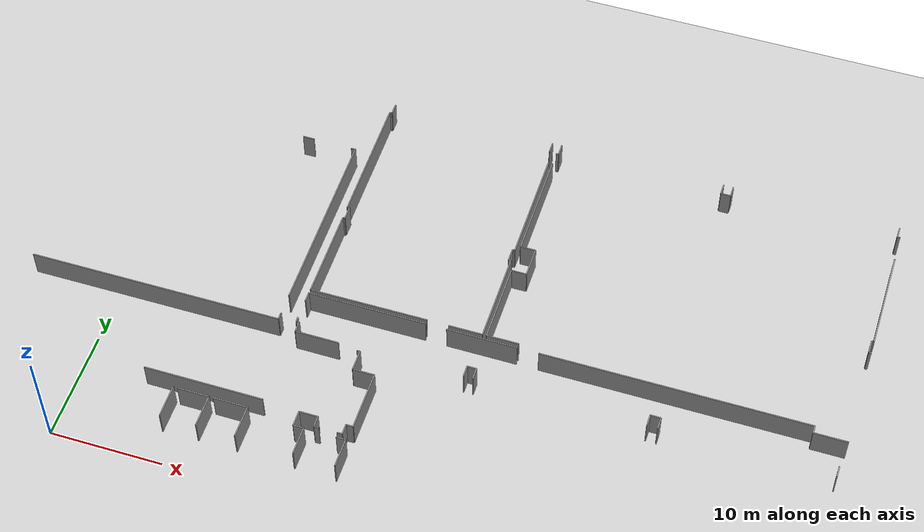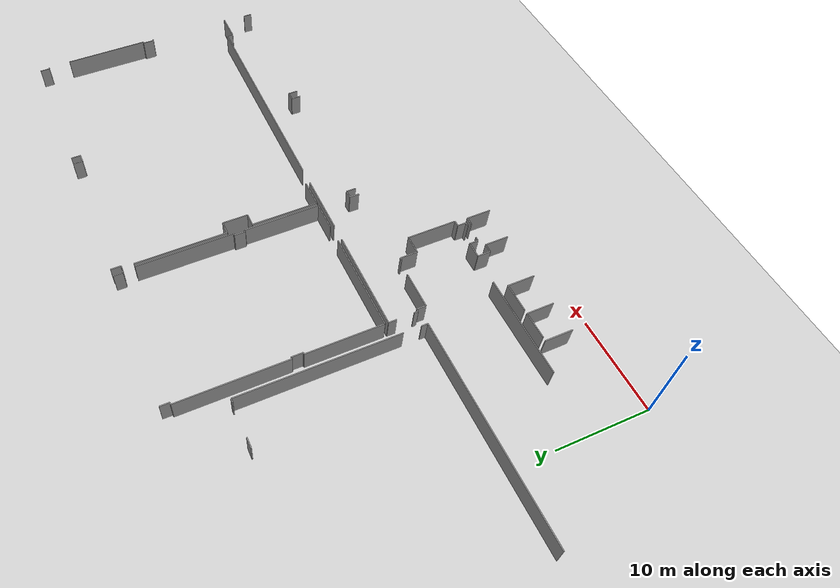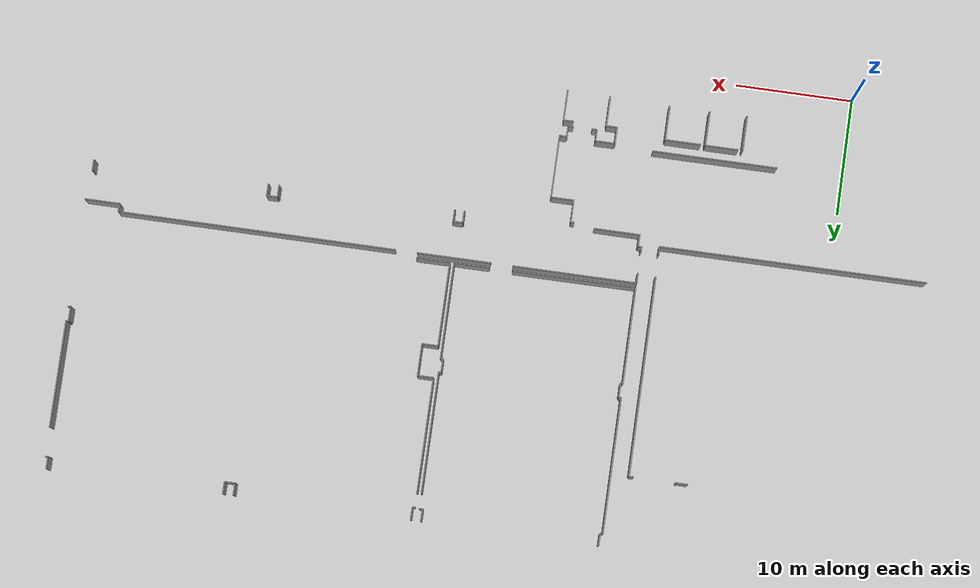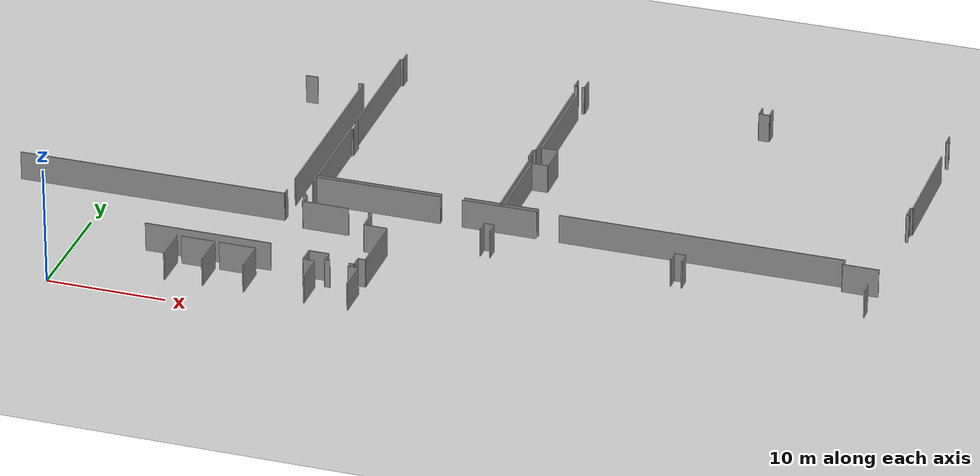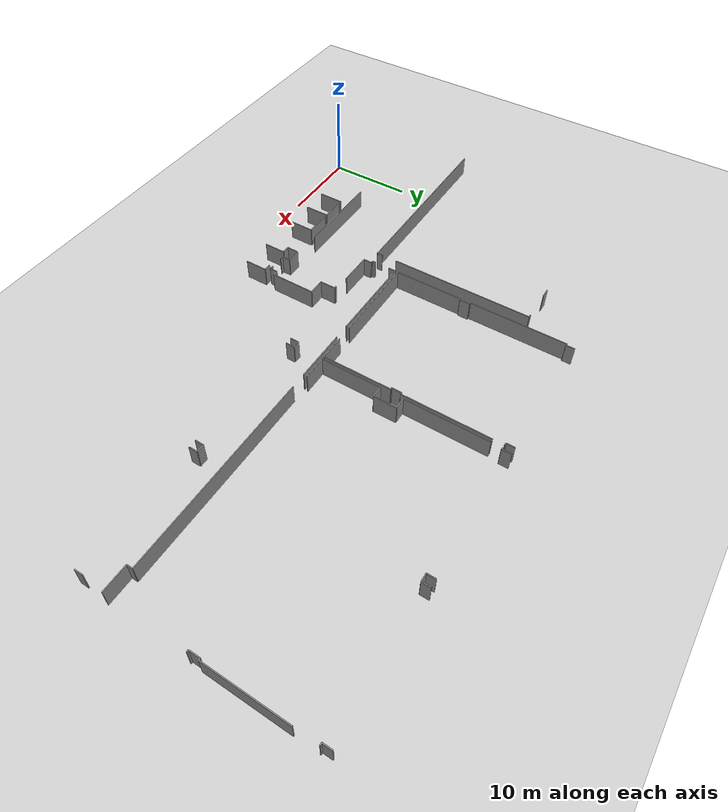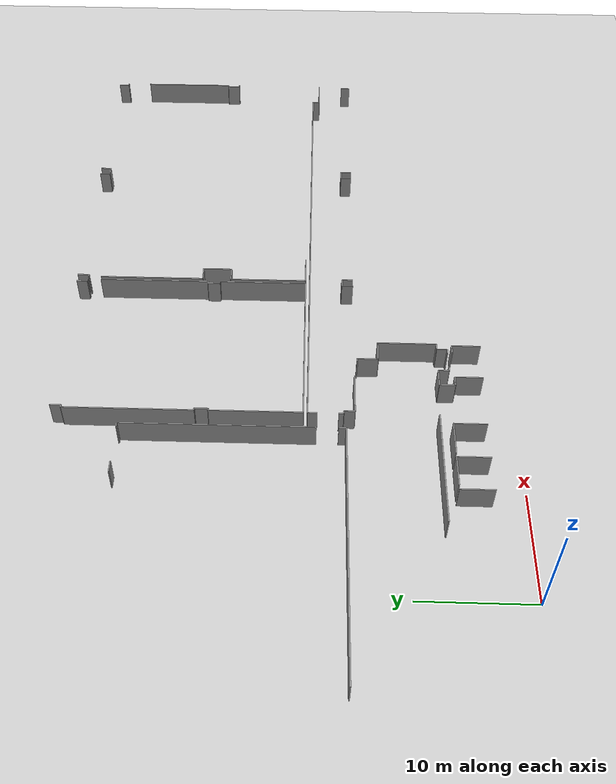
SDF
<sdf version="1.6">
 <world name="default">
  <model name="ground_plane">
   <static>1</static>
   <link name="link">
    <collision name="collision">
     <geometry><plane><normal>0 0 1</normal><size>100 100</size></plane></geometry>
     <surface><friction><ode><mu>100</mu><mu2>50</mu2></ode></friction></surface>
    </collision>
    <visual name="visual">
     <cast_shadows>0</cast_shadows>
     <geometry><plane><normal>0 0 1</normal><size>100 100</size></plane></geometry>
     <material>
      <script><uri>file://media/materials/scripts/gazebo.material</uri><name>Gazebo/Grey</name></script>
     </material>
    </visual>
   </link>
  </model>
  <model name="0510035741_A_40_1_104">
   <static>1</static>
   <link name="Wall_197">
    <collision name="Wall_197_Collision">
     <geometry><box><size>1.05231742242 0.1 2.5</size></box></geometry>
     <pose>0.52615871121 0 1.25 0 0 0</pose>
    </collision>
    <visual name="Wall_197_Visual">
     <pose>0.52615871121 0 1.25 0 0 0</pose>
     <geometry><box><size>1.05231742242 0.1 2.5</size></box></geometry>
     <material>
      <script><uri>file://media/materials/scripts/gazebo.material</uri><name>Gazebo/Grey</name></script>
      <ambient>1 1 1 1</ambient>
     </material>
    </visual>
    <pose>103.708510868 -14.828963494 0 0 0 0.0</pose>
   </link>
   <link name="Wall_198">
    <collision name="Wall_198_Collision">
     <geometry><box><size>0.400810256475 0.1 2.5</size></box></geometry>
     <pose>0.200405128238 0 1.25 0 0 0</pose>
    </collision>
    <visual name="Wall_198_Visual">
     <pose>0.200405128238 0 1.25 0 0 0</pose>
     <geometry><box><size>0.400810256475 0.1 2.5</size></box></geometry>
     <material>
      <script><uri>file://media/materials/scripts/gazebo.material</uri><name>Gazebo/Grey</name></script>
      <ambient>1 1 1 1</ambient>
     </material>
    </visual>
    <pose>108.334592745 -14.828963494 0 0 0 0.0</pose>
   </link>
   <link name="Wall_199">
    <collision name="Wall_199_Collision">
     <geometry><box><size>17.1329874715 0.1 2.5</size></box></geometry>
     <pose>8.56649373575 0 1.25 0 0 0</pose>
    </collision>
    <visual name="Wall_199_Visual">
     <pose>8.56649373575 0 1.25 0 0 0</pose>
     <geometry><box><size>17.1329874715 0.1 2.5</size></box></geometry>
     <material>
      <script><uri>file://media/materials/scripts/gazebo.material</uri><name>Gazebo/Grey</name></script>
      <ambient>1 1 1 1</ambient>
     </material>
    </visual>
    <pose>108.735403001 -14.828963494 0 0 0 -1.57079632679</pose>
   </link>
   <link name="Wall_200">
    <collision name="Wall_200_Collision">
     <geometry><box><size>0.668017094126 0.1 2.5</size></box></geometry>
     <pose>0.334008547063 0 1.25 0 0 0</pose>
    </collision>
    <visual name="Wall_200_Visual">
     <pose>0.334008547063 0 1.25 0 0 0</pose>
     <geometry><box><size>0.668017094126 0.1 2.5</size></box></geometry>
     <material>
      <script><uri>file://media/materials/scripts/gazebo.material</uri><name>Gazebo/Grey</name></script>
      <ambient>1 1 1 1</ambient>
     </material>
    </visual>
    <pose>108.735403001 -33.8679586744 0 0 0 -1.57079632679</pose>
   </link>
   <link name="Wall_201">
    <collision name="Wall_201_Collision">
     <geometry><box><size>22.8467474121 0.1 2.5</size></box></geometry>
     <pose>11.423373706 0 1.25 0 0 0</pose>
    </collision>
    <visual name="Wall_201_Visual">
     <pose>11.423373706 0 1.25 0 0 0</pose>
     <geometry><box><size>22.8467474121 0.1 2.5</size></box></geometry>
     <material>
      <script><uri>file://media/materials/scripts/gazebo.material</uri><name>Gazebo/Grey</name></script>
      <ambient>1 1 1 1</ambient>
     </material>
    </visual>
    <pose>108.735403001 -34.5359757685 0 0 0 -3.13940250278</pose>
   </link>
   <link name="Wall_207">
    <collision name="Wall_207_Collision">
     <geometry><box><size>0.288288745944 0.1 2.5</size></box></geometry>
     <pose>0.144144372972 0 1.25 0 0 0</pose>
    </collision>
    <visual name="Wall_207_Visual">
     <pose>0.144144372972 0 1.25 0 0 0</pose>
     <geometry><box><size>0.288288745944 0.1 2.5</size></box></geometry>
     <material>
      <script><uri>file://media/materials/scripts/gazebo.material</uri><name>Gazebo/Grey</name></script>
      <ambient>1 1 1 1</ambient>
     </material>
    </visual>
    <pose>116.226592414 -35.5801652263 0 0 0 0.0</pose>
   </link>
   <link name="Wall_208">
    <collision name="Wall_208_Collision">
     <geometry><box><size>1.89178377074 0.1 2.5</size></box></geometry>
     <pose>0.94589188537 0 1.25 0 0 0</pose>
    </collision>
    <visual name="Wall_208_Visual">
     <pose>0.94589188537 0 1.25 0 0 0</pose>
     <geometry><box><size>1.89178377074 0.1 2.5</size></box></geometry>
     <material>
      <script><uri>file://media/materials/scripts/gazebo.material</uri><name>Gazebo/Grey</name></script>
      <ambient>1 1 1 1</ambient>
     </material>
    </visual>
    <pose>116.51488116 -35.5801652263 0 0 0 -1.57079632679</pose>
   </link>
   <link name="Wall_209">
    <collision name="Wall_209_Collision">
     <geometry><box><size>1.93978956192 0.1 2.5</size></box></geometry>
     <pose>0.969894780958 0 1.25 0 0 0</pose>
    </collision>
    <visual name="Wall_209_Visual">
     <pose>0.969894780958 0 1.25 0 0 0</pose>
     <geometry><box><size>1.93978956192 0.1 2.5</size></box></geometry>
     <material>
      <script><uri>file://media/materials/scripts/gazebo.material</uri><name>Gazebo/Grey</name></script>
      <ambient>1 1 1 1</ambient>
     </material>
    </visual>
    <pose>116.51488116 -37.471948997 0 0 0 0.0</pose>
   </link>
   <link name="Wall_210">
    <collision name="Wall_210_Collision">
     <geometry><box><size>5.35861469003 0.1 2.5</size></box></geometry>
     <pose>2.67930734501 0 1.25 0 0 0</pose>
    </collision>
    <visual name="Wall_210_Visual">
     <pose>2.67930734501 0 1.25 0 0 0</pose>
     <geometry><box><size>5.35861469003 0.1 2.5</size></box></geometry>
     <material>
      <script><uri>file://media/materials/scripts/gazebo.material</uri><name>Gazebo/Grey</name></script>
      <ambient>1 1 1 1</ambient>
     </material>
    </visual>
    <pose>118.454670722 -37.471948997 0 0 0 -1.57079632679</pose>
   </link>
   <link name="Wall_211">
    <collision name="Wall_211_Collision">
     <geometry><box><size>0.614677326154 0.1 2.5</size></box></geometry>
     <pose>0.307338663077 0 1.25 0 0 0</pose>
    </collision>
    <visual name="Wall_211_Visual">
     <pose>0.307338663077 0 1.25 0 0 0</pose>
     <geometry><box><size>0.614677326154 0.1 2.5</size></box></geometry>
     <material>
      <script><uri>file://media/materials/scripts/gazebo.material</uri><name>Gazebo/Grey</name></script>
      <ambient>1 1 1 1</ambient>
     </material>
    </visual>
    <pose>118.454670722 -42.830563687 0 0 0 3.14159265359</pose>
   </link>
   <link name="Wall_212">
    <collision name="Wall_212_Collision">
     <geometry><box><size>0.941065906363 0.1 2.5</size></box></geometry>
     <pose>0.470532953182 0 1.25 0 0 0</pose>
    </collision>
    <visual name="Wall_212_Visual">
     <pose>0.470532953182 0 1.25 0 0 0</pose>
     <geometry><box><size>0.941065906363 0.1 2.5</size></box></geometry>
     <material>
      <script><uri>file://media/materials/scripts/gazebo.material</uri><name>Gazebo/Grey</name></script>
      <ambient>1 1 1 1</ambient>
     </material>
    </visual>
    <pose>117.839993396 -42.830563687 0 0 0 -1.57079632679</pose>
   </link>
   <link name="Wall_213">
    <collision name="Wall_213_Collision">
     <geometry><box><size>0.448054050965 0.1 2.5</size></box></geometry>
     <pose>0.224027025482 0 1.25 0 0 0</pose>
    </collision>
    <visual name="Wall_213_Visual">
     <pose>0.224027025482 0 1.25 0 0 0</pose>
     <geometry><box><size>0.448054050965 0.1 2.5</size></box></geometry>
     <material>
      <script><uri>file://media/materials/scripts/gazebo.material</uri><name>Gazebo/Grey</name></script>
      <ambient>1 1 1 1</ambient>
     </material>
    </visual>
    <pose>117.839993396 -43.7716295934 0 0 0 3.14159265359</pose>
   </link>
   <link name="Wall_214">
    <collision name="Wall_214_Collision">
     <geometry><box><size>0.440180085217 0.1 2.5</size></box></geometry>
     <pose>0.220090042608 0 1.25 0 0 0</pose>
    </collision>
    <visual name="Wall_214_Visual">
     <pose>0.220090042608 0 1.25 0 0 0</pose>
     <geometry><box><size>0.440180085217 0.1 2.5</size></box></geometry>
     <material>
      <script><uri>file://media/materials/scripts/gazebo.material</uri><name>Gazebo/Grey</name></script>
      <ambient>1 1 1 1</ambient>
     </material>
    </visual>
    <pose>115.805462246 -43.7716295934 0 0 0 3.14159265359</pose>
   </link>
   <link name="Wall_215">
    <collision name="Wall_215_Collision">
     <geometry><box><size>0.974085762727 0.1 2.5</size></box></geometry>
     <pose>0.487042881363 0 1.25 0 0 0</pose>
    </collision>
    <visual name="Wall_215_Visual">
     <pose>0.487042881363 0 1.25 0 0 0</pose>
     <geometry><box><size>0.974085762727 0.1 2.5</size></box></geometry>
     <material>
      <script><uri>file://media/materials/scripts/gazebo.material</uri><name>Gazebo/Grey</name></script>
      <ambient>1 1 1 1</ambient>
     </material>
    </visual>
    <pose>115.365282161 -43.7716295934 0 0 0 1.57079632679</pose>
   </link>
   <link name="Wall_216">
    <collision name="Wall_216_Collision">
     <geometry><box><size>1.66902673973 0.1 2.5</size></box></geometry>
     <pose>0.834513369867 0 1.25 0 0 0</pose>
    </collision>
    <visual name="Wall_216_Visual">
     <pose>0.834513369867 0 1.25 0 0 0</pose>
     <geometry><box><size>1.66902673973 0.1 2.5</size></box></geometry>
     <material>
      <script><uri>file://media/materials/scripts/gazebo.material</uri><name>Gazebo/Grey</name></script>
      <ambient>1 1 1 1</ambient>
     </material>
    </visual>
    <pose>115.365282161 -42.7975438307 0 0 0 3.14159265359</pose>
   </link>
   <link name="Wall_217">
    <collision name="Wall_217_Collision">
     <geometry><box><size>1.41248785568 0.1 2.5</size></box></geometry>
     <pose>0.706243927839 0 1.25 0 0 0</pose>
    </collision>
    <visual name="Wall_217_Visual">
     <pose>0.706243927839 0 1.25 0 0 0</pose>
     <geometry><box><size>1.41248785568 0.1 2.5</size></box></geometry>
     <material>
      <script><uri>file://media/materials/scripts/gazebo.material</uri><name>Gazebo/Grey</name></script>
      <ambient>1 1 1 1</ambient>
     </material>
    </visual>
    <pose>113.696255421 -42.7975438307 0 0 0 -1.57079632679</pose>
   </link>
   <link name="Wall_218">
    <collision name="Wall_218_Collision">
     <geometry><box><size>0.924555978181 0.1 2.5</size></box></geometry>
     <pose>0.462277989091 0 1.25 0 0 0</pose>
    </collision>
    <visual name="Wall_218_Visual">
     <pose>0.462277989091 0 1.25 0 0 0</pose>
     <geometry><box><size>0.924555978181 0.1 2.5</size></box></geometry>
     <material>
      <script><uri>file://media/materials/scripts/gazebo.material</uri><name>Gazebo/Grey</name></script>
      <ambient>1 1 1 1</ambient>
     </material>
    </visual>
    <pose>113.696255421 -44.2100316864 0 0 0 0.0</pose>
   </link>
   <link name="Wall_219">
    <collision name="Wall_219_Collision">
     <geometry><box><size>2.55599088144 0.1 2.5</size></box></geometry>
     <pose>1.27799544072 0 1.25 0 0 0</pose>
    </collision>
    <visual name="Wall_219_Visual">
     <pose>1.27799544072 0 1.25 0 0 0</pose>
     <geometry><box><size>2.55599088144 0.1 2.5</size></box></geometry>
     <material>
      <script><uri>file://media/materials/scripts/gazebo.material</uri><name>Gazebo/Grey</name></script>
      <ambient>1 1 1 1</ambient>
     </material>
    </visual>
    <pose>114.620811399 -44.2100316864 0 0 0 -1.57079632679</pose>
   </link>
   <link name="Wall_222">
    <collision name="Wall_222_Collision">
     <geometry><box><size>10.6783675491 0.1 2.5</size></box></geometry>
     <pose>5.33918377455 0 1.25 0 0 0</pose>
    </collision>
    <visual name="Wall_222_Visual">
     <pose>5.33918377455 0 1.25 0 0 0</pose>
     <geometry><box><size>10.6783675491 0.1 2.5</size></box></geometry>
     <material>
      <script><uri>file://media/materials/scripts/gazebo.material</uri><name>Gazebo/Grey</name></script>
      <ambient>1 1 1 1</ambient>
     </material>
    </visual>
    <pose>110.407223729 -42.5999326903 0 0 0 3.14159265359</pose>
   </link>
   <link name="Wall_226">
    <collision name="Wall_226_Collision">
     <geometry><box><size>0.998723655552 0.1 2.5</size></box></geometry>
     <pose>0.499361827776 0 1.25 0 0 0</pose>
    </collision>
    <visual name="Wall_226_Visual">
     <pose>0.499361827776 0 1.25 0 0 0</pose>
     <geometry><box><size>0.998723655552 0.1 2.5</size></box></geometry>
     <material>
      <script><uri>file://media/materials/scripts/gazebo.material</uri><name>Gazebo/Grey</name></script>
      <ambient>1 1 1 1</ambient>
     </material>
    </visual>
    <pose>110.56089306 -35.3017824372 0 0 0 1.57079632679</pose>
   </link>
   <link name="Wall_227">
    <collision name="Wall_227_Collision">
     <geometry><box><size>0.288034747049 0.1 2.5</size></box></geometry>
     <pose>0.144017373524 0 1.25 0 0 0</pose>
    </collision>
    <visual name="Wall_227_Visual">
     <pose>0.144017373524 0 1.25 0 0 0</pose>
     <geometry><box><size>0.288034747049 0.1 2.5</size></box></geometry>
     <material>
      <script><uri>file://media/materials/scripts/gazebo.material</uri><name>Gazebo/Grey</name></script>
      <ambient>1 1 1 1</ambient>
     </material>
    </visual>
    <pose>110.56089306 -34.3030587817 0 0 0 3.14159265359</pose>
   </link>
   <link name="Wall_228">
    <collision name="Wall_228_Collision">
     <geometry><box><size>0.422654161454 0.1 2.5</size></box></geometry>
     <pose>0.211327080727 0 1.25 0 0 0</pose>
    </collision>
    <visual name="Wall_228_Visual">
     <pose>0.211327080727 0 1.25 0 0 0</pose>
     <geometry><box><size>0.422654161454 0.1 2.5</size></box></geometry>
     <material>
      <script><uri>file://media/materials/scripts/gazebo.material</uri><name>Gazebo/Grey</name></script>
      <ambient>1 1 1 1</ambient>
     </material>
    </visual>
    <pose>110.272858313 -34.3030587817 0 0 0 1.57079632679</pose>
   </link>
   <link name="Wall_229">
    <collision name="Wall_229_Collision">
     <geometry><box><size>0.864104241147 0.1 2.5</size></box></geometry>
     <pose>0.432052120573 0 1.25 0 0 0</pose>
    </collision>
    <visual name="Wall_229_Visual">
     <pose>0.432052120573 0 1.25 0 0 0</pose>
     <geometry><box><size>0.864104241147 0.1 2.5</size></box></geometry>
     <material>
      <script><uri>file://media/materials/scripts/gazebo.material</uri><name>Gazebo/Grey</name></script>
      <ambient>1 1 1 1</ambient>
     </material>
    </visual>
    <pose>110.272858313 -32.0366266407 0 0 0 1.57079632679</pose>
   </link>
   <link name="Wall_230">
    <collision name="Wall_230_Collision">
     <geometry><box><size>10.6209637988 0.1 2.5</size></box></geometry>
     <pose>5.3104818994 0 1.25 0 0 0</pose>
    </collision>
    <visual name="Wall_230_Visual">
     <pose>5.3104818994 0 1.25 0 0 0</pose>
     <geometry><box><size>10.6209637988 0.1 2.5</size></box></geometry>
     <material>
      <script><uri>file://media/materials/scripts/gazebo.material</uri><name>Gazebo/Grey</name></script>
      <ambient>1 1 1 1</ambient>
     </material>
    </visual>
    <pose>110.272858313 -31.1725223995 0 0 0 0.0</pose>
   </link>
   <link name="Wall_231">
    <collision name="Wall_231_Collision">
     <geometry><box><size>6.29612461186 0.1 2.5</size></box></geometry>
     <pose>3.14806230593 0 1.25 0 0 0</pose>
    </collision>
    <visual name="Wall_231_Visual">
     <pose>3.14806230593 0 1.25 0 0 0</pose>
     <geometry><box><size>6.29612461186 0.1 2.5</size></box></geometry>
     <material>
      <script><uri>file://media/materials/scripts/gazebo.material</uri><name>Gazebo/Grey</name></script>
      <ambient>1 1 1 1</ambient>
     </material>
    </visual>
    <pose>122.764269975 -31.1725223995 0 0 0 0.0</pose>
   </link>
   <link name="Wall_232">
    <collision name="Wall_232_Collision">
     <geometry><box><size>23.7885205199 0.1 2.5</size></box></geometry>
     <pose>11.89426026 0 1.25 0 0 0</pose>
    </collision>
    <visual name="Wall_232_Visual">
     <pose>11.89426026 0 1.25 0 0 0</pose>
     <geometry><box><size>23.7885205199 0.1 2.5</size></box></geometry>
     <material>
      <script><uri>file://media/materials/scripts/gazebo.material</uri><name>Gazebo/Grey</name></script>
      <ambient>1 1 1 1</ambient>
     </material>
    </visual>
    <pose>130.957766334 -31.1725223995 0 0 0 0.0</pose>
   </link>
   <link name="Wall_233">
    <collision name="Wall_233_Collision">
     <geometry><box><size>0.688337005734 0.1 2.5</size></box></geometry>
     <pose>0.344168502867 0 1.25 0 0 0</pose>
    </collision>
    <visual name="Wall_233_Visual">
     <pose>0.344168502867 0 1.25 0 0 0</pose>
     <geometry><box><size>0.688337005734 0.1 2.5</size></box></geometry>
     <material>
      <script><uri>file://media/materials/scripts/gazebo.material</uri><name>Gazebo/Grey</name></script>
      <ambient>1 1 1 1</ambient>
     </material>
    </visual>
    <pose>154.746286854 -31.1725223995 0 0 0 -1.57079632679</pose>
   </link>
   <link name="Wall_234">
    <collision name="Wall_234_Collision">
     <geometry><box><size>2.99286898102 0.1 2.5</size></box></geometry>
     <pose>1.49643449051 0 1.25 0 0 0</pose>
    </collision>
    <visual name="Wall_234_Visual">
     <pose>1.49643449051 0 1.25 0 0 0</pose>
     <geometry><box><size>2.99286898102 0.1 2.5</size></box></geometry>
     <material>
      <script><uri>file://media/materials/scripts/gazebo.material</uri><name>Gazebo/Grey</name></script>
      <ambient>1 1 1 1</ambient>
     </material>
    </visual>
    <pose>154.746286854 -31.8608594053 0 0 0 0.0</pose>
   </link>
   <link name="Wall_238">
    <collision name="Wall_238_Collision">
     <geometry><box><size>0.941065906363 0.1 2.5</size></box></geometry>
     <pose>0.470532953182 0 1.25 0 0 0</pose>
    </collision>
    <visual name="Wall_238_Visual">
     <pose>0.470532953182 0 1.25 0 0 0</pose>
     <geometry><box><size>0.941065906363 0.1 2.5</size></box></geometry>
     <material>
      <script><uri>file://media/materials/scripts/gazebo.material</uri><name>Gazebo/Grey</name></script>
      <ambient>1 1 1 1</ambient>
     </material>
    </visual>
    <pose>157.481092957 -34.379766448 0 0 0 -1.57079632679</pose>
   </link>
   <link name="Wall_239">
    <collision name="Wall_239_Collision">
     <geometry><box><size>1.04393545888 0.1 2.5</size></box></geometry>
     <pose>0.52196772944 0 1.25 0 0 0</pose>
    </collision>
    <visual name="Wall_239_Visual">
     <pose>0.52196772944 0 1.25 0 0 0</pose>
     <geometry><box><size>1.04393545888 0.1 2.5</size></box></geometry>
     <material>
      <script><uri>file://media/materials/scripts/gazebo.material</uri><name>Gazebo/Grey</name></script>
      <ambient>1 1 1 1</ambient>
     </material>
    </visual>
    <pose>142.450708339 -35.3208323544 0 0 0 1.57079632679</pose>
   </link>
   <link name="Wall_240">
    <collision name="Wall_240_Collision">
     <geometry><box><size>0.926333970447 0.1 2.5</size></box></geometry>
     <pose>0.463166985224 0 1.25 0 0 0</pose>
    </collision>
    <visual name="Wall_240_Visual">
     <pose>0.463166985224 0 1.25 0 0 0</pose>
     <geometry><box><size>0.926333970447 0.1 2.5</size></box></geometry>
     <material>
      <script><uri>file://media/materials/scripts/gazebo.material</uri><name>Gazebo/Grey</name></script>
      <ambient>1 1 1 1</ambient>
     </material>
    </visual>
    <pose>142.450708339 -34.2768968955 0 0 0 3.14159265359</pose>
   </link>
   <link name="Wall_241">
    <collision name="Wall_241_Collision">
     <geometry><box><size>1.03123551413 0.1 2.5</size></box></geometry>
     <pose>0.515617757063 0 1.25 0 0 0</pose>
    </collision>
    <visual name="Wall_241_Visual">
     <pose>0.515617757063 0 1.25 0 0 0</pose>
     <geometry><box><size>1.03123551413 0.1 2.5</size></box></geometry>
     <material>
      <script><uri>file://media/materials/scripts/gazebo.material</uri><name>Gazebo/Grey</name></script>
      <ambient>1 1 1 1</ambient>
     </material>
    </visual>
    <pose>141.524374369 -34.2768968955 0 0 0 -1.57079632679</pose>
   </link>
   <link name="Wall_242">
    <collision name="Wall_242_Collision">
     <geometry><box><size>1.04596745004 0.1 2.5</size></box></geometry>
     <pose>0.522983725021 0 1.25 0 0 0</pose>
    </collision>
    <visual name="Wall_242_Visual">
     <pose>0.522983725021 0 1.25 0 0 0</pose>
     <geometry><box><size>1.04596745004 0.1 2.5</size></box></geometry>
     <material>
      <script><uri>file://media/materials/scripts/gazebo.material</uri><name>Gazebo/Grey</name></script>
      <ambient>1 1 1 1</ambient>
     </material>
    </visual>
    <pose>126.427442041 -35.3081324096 0 0 0 1.57079632679</pose>
   </link>
   <link name="Wall_243">
    <collision name="Wall_243_Collision">
     <geometry><box><size>0.827782399147 0.1 2.5</size></box></geometry>
     <pose>0.413891199573 0 1.25 0 0 0</pose>
    </collision>
    <visual name="Wall_243_Visual">
     <pose>0.413891199573 0 1.25 0 0 0</pose>
     <geometry><box><size>0.827782399147 0.1 2.5</size></box></geometry>
     <material>
      <script><uri>file://media/materials/scripts/gazebo.material</uri><name>Gazebo/Grey</name></script>
      <ambient>1 1 1 1</ambient>
     </material>
    </visual>
    <pose>126.427442041 -34.2621649596 0 0 0 3.14159265359</pose>
   </link>
   <link name="Wall_244">
    <collision name="Wall_244_Collision">
     <geometry><box><size>1.04571345115 0.1 2.5</size></box></geometry>
     <pose>0.522856725573 0 1.25 0 0 0</pose>
    </collision>
    <visual name="Wall_244_Visual">
     <pose>0.522856725573 0 1.25 0 0 0</pose>
     <geometry><box><size>1.04571345115 0.1 2.5</size></box></geometry>
     <material>
      <script><uri>file://media/materials/scripts/gazebo.material</uri><name>Gazebo/Grey</name></script>
      <ambient>1 1 1 1</ambient>
     </material>
    </visual>
    <pose>125.599659641 -34.2621649596 0 0 0 -1.57079632679</pose>
   </link>
   <link name="Wall_245">
    <collision name="Wall_245_Collision">
     <geometry><box><size>3.91971568951 0.1 2.5</size></box></geometry>
     <pose>1.95985784476 0 1.25 0 0 0</pose>
    </collision>
    <visual name="Wall_245_Visual">
     <pose>1.95985784476 0 1.25 0 0 0</pose>
     <geometry><box><size>3.91971568951 0.1 2.5</size></box></geometry>
     <material>
      <script><uri>file://media/materials/scripts/gazebo.material</uri><name>Gazebo/Grey</name></script>
      <ambient>1 1 1 1</ambient>
     </material>
    </visual>
    <pose>114.480604009 -35.3078784107 0 0 0 3.14003744489</pose>
   </link>
   <link name="Wall_246">
    <collision name="Wall_246_Collision">
     <geometry><box><size>7.21941059556 0.1 2.5</size></box></geometry>
     <pose>3.60970529778 0 1.25 0 0 0</pose>
    </collision>
    <visual name="Wall_246_Visual">
     <pose>3.60970529778 0 1.25 0 0 0</pose>
     <geometry><box><size>7.21941059556 0.1 2.5</size></box></geometry>
     <material>
      <script><uri>file://media/materials/scripts/gazebo.material</uri><name>Gazebo/Grey</name></script>
      <ambient>1 1 1 1</ambient>
     </material>
    </visual>
    <pose>126.206209003 -30.7661241674 0 0 0 1.57079632679</pose>
   </link>
   <link name="Wall_247">
    <collision name="Wall_247_Collision">
     <geometry><box><size>1.36778405014 0.1 2.5</size></box></geometry>
     <pose>0.68389202507 0 1.25 0 0 0</pose>
    </collision>
    <visual name="Wall_247_Visual">
     <pose>0.68389202507 0 1.25 0 0 0</pose>
     <geometry><box><size>1.36778405014 0.1 2.5</size></box></geometry>
     <material>
      <script><uri>file://media/materials/scripts/gazebo.material</uri><name>Gazebo/Grey</name></script>
      <ambient>1 1 1 1</ambient>
     </material>
    </visual>
    <pose>126.206209003 -23.5467135718 0 0 0 0.0</pose>
   </link>
   <link name="Wall_248">
    <collision name="Wall_248_Collision">
     <geometry><box><size>2.72210615884 0.1 2.5</size></box></geometry>
     <pose>1.36105307942 0 1.25 0 0 0</pose>
    </collision>
    <visual name="Wall_248_Visual">
     <pose>1.36105307942 0 1.25 0 0 0</pose>
     <geometry><box><size>2.72210615884 0.1 2.5</size></box></geometry>
     <material>
      <script><uri>file://media/materials/scripts/gazebo.material</uri><name>Gazebo/Grey</name></script>
      <ambient>1 1 1 1</ambient>
     </material>
    </visual>
    <pose>127.573993053 -23.5467135718 0 0 0 1.57079632679</pose>
   </link>
   <link name="Wall_249">
    <collision name="Wall_249_Collision">
     <geometry><box><size>1.35279811533 0.1 2.5</size></box></geometry>
     <pose>0.676399057664 0 1.25 0 0 0</pose>
    </collision>
    <visual name="Wall_249_Visual">
     <pose>0.676399057664 0 1.25 0 0 0</pose>
     <geometry><box><size>1.35279811533 0.1 2.5</size></box></geometry>
     <material>
      <script><uri>file://media/materials/scripts/gazebo.material</uri><name>Gazebo/Grey</name></script>
      <ambient>1 1 1 1</ambient>
     </material>
    </visual>
    <pose>127.573993053 -20.824607413 0 0 0 3.14159265359</pose>
   </link>
   <link name="Wall_250">
    <collision name="Wall_250_Collision">
     <geometry><box><size>9.83686920962 0.1 2.5</size></box></geometry>
     <pose>4.91843460481 0 1.25 0 0 0</pose>
    </collision>
    <visual name="Wall_250_Visual">
     <pose>4.91843460481 0 1.25 0 0 0</pose>
     <geometry><box><size>9.83686920962 0.1 2.5</size></box></geometry>
     <material>
      <script><uri>file://media/materials/scripts/gazebo.material</uri><name>Gazebo/Grey</name></script>
      <ambient>1 1 1 1</ambient>
     </material>
    </visual>
    <pose>126.221194938 -20.824607413 0 0 0 1.57079632679</pose>
   </link>
   <link name="Wall_251">
    <collision name="Wall_251_Collision">
     <geometry><box><size>0.223011029902 0.1 2.5</size></box></geometry>
     <pose>0.111505514951 0 1.25 0 0 0</pose>
    </collision>
    <visual name="Wall_251_Visual">
     <pose>0.111505514951 0 1.25 0 0 0</pose>
     <geometry><box><size>0.223011029902 0.1 2.5</size></box></geometry>
     <material>
      <script><uri>file://media/materials/scripts/gazebo.material</uri><name>Gazebo/Grey</name></script>
      <ambient>1 1 1 1</ambient>
     </material>
    </visual>
    <pose>126.221194938 -9.77692547037 0 0 0 0.0</pose>
   </link>
   <link name="Wall_252">
    <collision name="Wall_252_Collision">
     <geometry><box><size>1.0947352379 0.1 2.5</size></box></geometry>
     <pose>0.547367618951 0 1.25 0 0 0</pose>
    </collision>
    <visual name="Wall_252_Visual">
     <pose>0.547367618951 0 1.25 0 0 0</pose>
     <geometry><box><size>1.0947352379 0.1 2.5</size></box></geometry>
     <material>
      <script><uri>file://media/materials/scripts/gazebo.material</uri><name>Gazebo/Grey</name></script>
      <ambient>1 1 1 1</ambient>
     </material>
    </visual>
    <pose>126.444205968 -9.77692547037 0 0 0 1.57079632679</pose>
   </link>
   <link name="Wall_253">
    <collision name="Wall_253_Collision">
     <geometry><box><size>1.01574158152 0.1 2.5</size></box></geometry>
     <pose>0.507870790762 0 1.25 0 0 0</pose>
    </collision>
    <visual name="Wall_253_Visual">
     <pose>0.507870790762 0 1.25 0 0 0</pose>
     <geometry><box><size>1.01574158152 0.1 2.5</size></box></geometry>
     <material>
      <script><uri>file://media/materials/scripts/gazebo.material</uri><name>Gazebo/Grey</name></script>
      <ambient>1 1 1 1</ambient>
     </material>
    </visual>
    <pose>141.526660359 -8.68219023247 0 0 0 -1.57079632679</pose>
   </link>
   <link name="Wall_254">
    <collision name="Wall_254_Collision">
     <geometry><box><size>0.889504130657 0.1 2.5</size></box></geometry>
     <pose>0.444752065329 0 1.25 0 0 0</pose>
    </collision>
    <visual name="Wall_254_Visual">
     <pose>0.444752065329 0 1.25 0 0 0</pose>
     <geometry><box><size>0.889504130657 0.1 2.5</size></box></geometry>
     <material>
      <script><uri>file://media/materials/scripts/gazebo.material</uri><name>Gazebo/Grey</name></script>
      <ambient>1 1 1 1</ambient>
     </material>
    </visual>
    <pose>141.526660359 -9.697931814 0 0 0 0.0</pose>
   </link>
   <link name="Wall_255">
    <collision name="Wall_255_Collision">
     <geometry><box><size>1.01040760473 0.1 2.5</size></box></geometry>
     <pose>0.505203802363 0 1.25 0 0 0</pose>
    </collision>
    <visual name="Wall_255_Visual">
     <pose>0.505203802363 0 1.25 0 0 0</pose>
     <geometry><box><size>1.01040760473 0.1 2.5</size></box></geometry>
     <material>
      <script><uri>file://media/materials/scripts/gazebo.material</uri><name>Gazebo/Grey</name></script>
      <ambient>1 1 1 1</ambient>
     </material>
    </visual>
    <pose>142.41616449 -9.697931814 0 0 0 1.57079632679</pose>
   </link>
   <link name="Wall_256">
    <collision name="Wall_256_Collision">
     <geometry><box><size>1.02996551965 0.1 2.5</size></box></geometry>
     <pose>0.514982759825 0 1.25 0 0 0</pose>
    </collision>
    <visual name="Wall_256_Visual">
     <pose>0.514982759825 0 1.25 0 0 0</pose>
     <geometry><box><size>1.02996551965 0.1 2.5</size></box></geometry>
     <material>
      <script><uri>file://media/materials/scripts/gazebo.material</uri><name>Gazebo/Grey</name></script>
      <ambient>1 1 1 1</ambient>
     </material>
    </visual>
    <pose>157.470679003 -8.68752420927 0 0 0 -1.57079632679</pose>
   </link>
   <link name="Wall_257">
    <collision name="Wall_257_Collision">
     <geometry><box><size>0.248410919413 0.1 2.5</size></box></geometry>
     <pose>0.124205459706 0 1.25 0 0 0</pose>
    </collision>
    <visual name="Wall_257_Visual">
     <pose>0.124205459706 0 1.25 0 0 0</pose>
     <geometry><box><size>0.248410919413 0.1 2.5</size></box></geometry>
     <material>
      <script><uri>file://media/materials/scripts/gazebo.material</uri><name>Gazebo/Grey</name></script>
      <ambient>1 1 1 1</ambient>
     </material>
    </visual>
    <pose>157.470679003 -9.71748972892 0 0 0 0.0</pose>
   </link>
   <link name="Wall_259">
    <collision name="Wall_259_Collision">
     <geometry><box><size>9.13354626907 0.1 2.5</size></box></geometry>
     <pose>4.56677313454 0 1.25 0 0 0</pose>
    </collision>
    <visual name="Wall_259_Visual">
     <pose>4.56677313454 0 1.25 0 0 0</pose>
     <geometry><box><size>9.13354626907 0.1 2.5</size></box></geometry>
     <material>
      <script><uri>file://media/materials/scripts/gazebo.material</uri><name>Gazebo/Grey</name></script>
      <ambient>1 1 1 1</ambient>
     </material>
    </visual>
    <pose>157.719089922 -12.2054089065 0 0 0 -1.57079632679</pose>
   </link>
   <link name="Wall_260">
    <collision name="Wall_260_Collision">
     <geometry><box><size>0.199643131552 0.1 2.5</size></box></geometry>
     <pose>0.0998215657762 0 1.25 0 0 0</pose>
    </collision>
    <visual name="Wall_260_Visual">
     <pose>0.0998215657762 0 1.25 0 0 0</pose>
     <geometry><box><size>0.199643131552 0.1 2.5</size></box></geometry>
     <material>
      <script><uri>file://media/materials/scripts/gazebo.material</uri><name>Gazebo/Grey</name></script>
      <ambient>1 1 1 1</ambient>
     </material>
    </visual>
    <pose>157.719089922 -21.3389551755 0 0 0 3.14159265359</pose>
   </link>
   <link name="Wall_261">
    <collision name="Wall_261_Collision">
     <geometry><box><size>1.22910065341 0.1 2.5</size></box></geometry>
     <pose>0.614550326706 0 1.25 0 0 0</pose>
    </collision>
    <visual name="Wall_261_Visual">
     <pose>0.614550326706 0 1.25 0 0 0</pose>
     <geometry><box><size>1.22910065341 0.1 2.5</size></box></geometry>
     <material>
      <script><uri>file://media/materials/scripts/gazebo.material</uri><name>Gazebo/Grey</name></script>
      <ambient>1 1 1 1</ambient>
     </material>
    </visual>
    <pose>157.51944679 -21.3389551755 0 0 0 -1.57079632679</pose>
   </link>
   <link name="Wall_262">
    <collision name="Wall_262_Collision">
     <geometry><box><size>0.230630996755 0.1 2.5</size></box></geometry>
     <pose>0.115315498378 0 1.25 0 0 0</pose>
    </collision>
    <visual name="Wall_262_Visual">
     <pose>0.115315498378 0 1.25 0 0 0</pose>
     <geometry><box><size>0.230630996755 0.1 2.5</size></box></geometry>
     <material>
      <script><uri>file://media/materials/scripts/gazebo.material</uri><name>Gazebo/Grey</name></script>
      <ambient>1 1 1 1</ambient>
     </material>
    </visual>
    <pose>157.51944679 -22.568055829 0 0 0 0.0</pose>
   </link>
   <link name="Wall_266">
    <collision name="Wall_266_Collision">
     <geometry><box><size>2.88853332807 0.1 2.5</size></box></geometry>
     <pose>1.44426666404 0 1.25 0 0 0</pose>
    </collision>
    <visual name="Wall_266_Visual">
     <pose>1.44426666404 0 1.25 0 0 0</pose>
     <geometry><box><size>2.88853332807 0.1 2.5</size></box></geometry>
     <material>
      <script><uri>file://media/materials/scripts/gazebo.material</uri><name>Gazebo/Grey</name></script>
      <ambient>1 1 1 1</ambient>
     </material>
    </visual>
    <pose>129.094684438 -30.7478362469 0 0 0 -3.13526139805</pose>
   </link>
   <link name="Wall_267">
    <collision name="Wall_267_Collision">
     <geometry><box><size>8.26207605997 0.1 2.5</size></box></geometry>
     <pose>4.13103802998 0 1.25 0 0 0</pose>
    </collision>
    <visual name="Wall_267_Visual">
     <pose>4.13103802998 0 1.25 0 0 0</pose>
     <geometry><box><size>8.26207605997 0.1 2.5</size></box></geometry>
     <material>
      <script><uri>file://media/materials/scripts/gazebo.material</uri><name>Gazebo/Grey</name></script>
      <ambient>1 1 1 1</ambient>
     </material>
    </visual>
    <pose>110.29648021 -30.8120979674 0 0 0 1.57079632679</pose>
   </link>
   <link name="Wall_268">
    <collision name="Wall_268_Collision">
     <geometry><box><size>0.183641201161 0.1 2.5</size></box></geometry>
     <pose>0.0918206005804 0 1.25 0 0 0</pose>
    </collision>
    <visual name="Wall_268_Visual">
     <pose>0.0918206005804 0 1.25 0 0 0</pose>
     <geometry><box><size>0.183641201161 0.1 2.5</size></box></geometry>
     <material>
      <script><uri>file://media/materials/scripts/gazebo.material</uri><name>Gazebo/Grey</name></script>
      <ambient>1 1 1 1</ambient>
     </material>
    </visual>
    <pose>110.29648021 -22.5500219074 0 0 0 0.0</pose>
   </link>
   <link name="Wall_269">
    <collision name="Wall_269_Collision">
     <geometry><box><size>1.21487671529 0.1 2.5</size></box></geometry>
     <pose>0.607438357643 0 1.25 0 0 0</pose>
    </collision>
    <visual name="Wall_269_Visual">
     <pose>0.607438357643 0 1.25 0 0 0</pose>
     <geometry><box><size>1.21487671529 0.1 2.5</size></box></geometry>
     <material>
      <script><uri>file://media/materials/scripts/gazebo.material</uri><name>Gazebo/Grey</name></script>
      <ambient>1 1 1 1</ambient>
     </material>
    </visual>
    <pose>110.480121411 -22.5500219074 0 0 0 1.57079632679</pose>
   </link>
   <link name="Wall_270">
    <collision name="Wall_270_Collision">
     <geometry><box><size>0.201675122713 0.1 2.5</size></box></geometry>
     <pose>0.100837561357 0 1.25 0 0 0</pose>
    </collision>
    <visual name="Wall_270_Visual">
     <pose>0.100837561357 0 1.25 0 0 0</pose>
     <geometry><box><size>0.201675122713 0.1 2.5</size></box></geometry>
     <material>
      <script><uri>file://media/materials/scripts/gazebo.material</uri><name>Gazebo/Grey</name></script>
      <ambient>1 1 1 1</ambient>
     </material>
    </visual>
    <pose>110.480121411 -21.3351451921 0 0 0 3.14159265359</pose>
   </link>
   <link name="Wall_271">
    <collision name="Wall_271_Collision">
     <geometry><box><size>11.6013995339 0.1 2.5</size></box></geometry>
     <pose>5.80069976696 0 1.25 0 0 0</pose>
    </collision>
    <visual name="Wall_271_Visual">
     <pose>5.80069976696 0 1.25 0 0 0</pose>
     <geometry><box><size>11.6013995339 0.1 2.5</size></box></geometry>
     <material>
      <script><uri>file://media/materials/scripts/gazebo.material</uri><name>Gazebo/Grey</name></script>
      <ambient>1 1 1 1</ambient>
     </material>
    </visual>
    <pose>110.278446289 -21.3351451921 0 0 0 1.57079632679</pose>
   </link>
   <link name="Wall_272">
    <collision name="Wall_272_Collision">
     <geometry><box><size>0.217931052 0.1 2.5</size></box></geometry>
     <pose>0.108965526 0 1.25 0 0 0</pose>
    </collision>
    <visual name="Wall_272_Visual">
     <pose>0.108965526 0 1.25 0 0 0</pose>
     <geometry><box><size>0.217931052 0.1 2.5</size></box></geometry>
     <material>
      <script><uri>file://media/materials/scripts/gazebo.material</uri><name>Gazebo/Grey</name></script>
      <ambient>1 1 1 1</ambient>
     </material>
    </visual>
    <pose>110.278446289 -9.73374565821 0 0 0 0.0</pose>
   </link>
   <link name="Wall_273">
    <collision name="Wall_273_Collision">
     <geometry><box><size>1.01650357821 0.1 2.5</size></box></geometry>
     <pose>0.508251789105 0 1.25 0 0 0</pose>
    </collision>
    <visual name="Wall_273_Visual">
     <pose>0.508251789105 0 1.25 0 0 0</pose>
     <geometry><box><size>1.01650357821 0.1 2.5</size></box></geometry>
     <material>
      <script><uri>file://media/materials/scripts/gazebo.material</uri><name>Gazebo/Grey</name></script>
      <ambient>1 1 1 1</ambient>
     </material>
    </visual>
    <pose>110.496377341 -9.73374565821 0 0 0 1.57079632679</pose>
   </link>
   <link name="Wall_274">
    <collision name="Wall_274_Collision">
     <geometry><box><size>1.00634362241 0.1 2.5</size></box></geometry>
     <pose>0.503171811203 0 1.25 0 0 0</pose>
    </collision>
    <visual name="Wall_274_Visual">
     <pose>0.503171811203 0 1.25 0 0 0</pose>
     <geometry><box><size>1.00634362241 0.1 2.5</size></box></geometry>
     <material>
      <script><uri>file://media/materials/scripts/gazebo.material</uri><name>Gazebo/Grey</name></script>
      <ambient>1 1 1 1</ambient>
     </material>
    </visual>
    <pose>125.575021749 -8.71724208 0 0 0 -1.57079632679</pose>
   </link>
   <link name="Wall_275">
    <collision name="Wall_275_Collision">
     <geometry><box><size>0.277874791245 0.1 2.5</size></box></geometry>
     <pose>0.138937395622 0 1.25 0 0 0</pose>
    </collision>
    <visual name="Wall_275_Visual">
     <pose>0.138937395622 0 1.25 0 0 0</pose>
     <geometry><box><size>0.277874791245 0.1 2.5</size></box></geometry>
     <material>
      <script><uri>file://media/materials/scripts/gazebo.material</uri><name>Gazebo/Grey</name></script>
      <ambient>1 1 1 1</ambient>
     </material>
    </visual>
    <pose>125.575021749 -9.7235857024 0 0 0 0.0</pose>
   </link>
   <link name="Wall_276">
    <collision name="Wall_276_Collision">
     <geometry><box><size>10.3695048927 0.1 2.5</size></box></geometry>
     <pose>5.18475244633 0 1.25 0 0 0</pose>
    </collision>
    <visual name="Wall_276_Visual">
     <pose>5.18475244633 0 1.25 0 0 0</pose>
     <geometry><box><size>10.3695048927 0.1 2.5</size></box></geometry>
     <material>
      <script><uri>file://media/materials/scripts/gazebo.material</uri><name>Gazebo/Grey</name></script>
      <ambient>1 1 1 1</ambient>
     </material>
    </visual>
    <pose>125.85289654 -11.0062801227 0 0 0 -1.57079632679</pose>
   </link>
   <link name="Wall_277">
    <collision name="Wall_277_Collision">
     <geometry><box><size>0.216153059734 0.1 2.5</size></box></geometry>
     <pose>0.108076529867 0 1.25 0 0 0</pose>
    </collision>
    <visual name="Wall_277_Visual">
     <pose>0.108076529867 0 1.25 0 0 0</pose>
     <geometry><box><size>0.216153059734 0.1 2.5</size></box></geometry>
     <material>
      <script><uri>file://media/materials/scripts/gazebo.material</uri><name>Gazebo/Grey</name></script>
      <ambient>1 1 1 1</ambient>
     </material>
    </visual>
    <pose>125.85289654 -21.3757850153 0 0 0 3.14159265359</pose>
   </link>
   <link name="Wall_278">
    <collision name="Wall_278_Collision">
     <geometry><box><size>1.16890291527 0.1 2.5</size></box></geometry>
     <pose>0.584451457636 0 1.25 0 0 0</pose>
    </collision>
    <visual name="Wall_278_Visual">
     <pose>0.584451457636 0 1.25 0 0 0</pose>
     <geometry><box><size>1.16890291527 0.1 2.5</size></box></geometry>
     <material>
      <script><uri>file://media/materials/scripts/gazebo.material</uri><name>Gazebo/Grey</name></script>
      <ambient>1 1 1 1</ambient>
     </material>
    </visual>
    <pose>125.63674348 -21.3757850153 0 0 0 -1.57079632679</pose>
   </link>
   <link name="Wall_279">
    <collision name="Wall_279_Collision">
     <geometry><box><size>0.217169055315 0.1 2.5</size></box></geometry>
     <pose>0.108584527657 0 1.25 0 0 0</pose>
    </collision>
    <visual name="Wall_279_Visual">
     <pose>0.108584527657 0 1.25 0 0 0</pose>
     <geometry><box><size>0.217169055315 0.1 2.5</size></box></geometry>
     <material>
      <script><uri>file://media/materials/scripts/gazebo.material</uri><name>Gazebo/Grey</name></script>
      <ambient>1 1 1 1</ambient>
     </material>
    </visual>
    <pose>125.63674348 -22.5446879306 0 0 0 0.0</pose>
   </link>
   <link name="Wall_280">
    <collision name="Wall_280_Collision">
     <geometry><box><size>8.23210419035 0.1 2.5</size></box></geometry>
     <pose>4.11605209517 0 1.25 0 0 0</pose>
    </collision>
    <visual name="Wall_280_Visual">
     <pose>4.11605209517 0 1.25 0 0 0</pose>
     <geometry><box><size>8.23210419035 0.1 2.5</size></box></geometry>
     <material>
      <script><uri>file://media/materials/scripts/gazebo.material</uri><name>Gazebo/Grey</name></script>
      <ambient>1 1 1 1</ambient>
     </material>
    </visual>
    <pose>125.853912535 -22.5446879306 0 0 0 -1.57079632679</pose>
   </link>
   <link name="Wall_281">
    <collision name="Wall_281_Collision">
     <geometry><box><size>3.04239876557 0.1 2.5</size></box></geometry>
     <pose>1.52119938278 0 1.25 0 0 0</pose>
    </collision>
    <visual name="Wall_281_Visual">
     <pose>1.52119938278 0 1.25 0 0 0</pose>
     <geometry><box><size>3.04239876557 0.1 2.5</size></box></geometry>
     <material>
      <script><uri>file://media/materials/scripts/gazebo.material</uri><name>Gazebo/Grey</name></script>
      <ambient>1 1 1 1</ambient>
     </material>
    </visual>
    <pose>125.853912535 -30.776792121 0 0 0 3.14159265359</pose>
   </link>
   <link name="Wall_282">
    <collision name="Wall_282_Collision">
     <geometry><box><size>10.5867328191 0.1 2.5</size></box></geometry>
     <pose>5.29336640956 0 1.25 0 0 0</pose>
    </collision>
    <visual name="Wall_282_Visual">
     <pose>5.29336640956 0 1.25 0 0 0</pose>
     <geometry><box><size>10.5867328191 0.1 2.5</size></box></geometry>
     <material>
      <script><uri>file://media/materials/scripts/gazebo.material</uri><name>Gazebo/Grey</name></script>
      <ambient>1 1 1 1</ambient>
     </material>
    </visual>
    <pose>120.883154158 -30.776792121 0 0 0 -3.13825773313</pose>
   </link>
   <link name="Wall_315">
    <collision name="Wall_315_Collision">
     <geometry><box><size>0.839212349426 0.1 2.5</size></box></geometry>
     <pose>0.419606174713 0 1.25 0 0 0</pose>
    </collision>
    <visual name="Wall_315_Visual">
     <pose>0.419606174713 0 1.25 0 0 0</pose>
     <geometry><box><size>0.839212349426 0.1 2.5</size></box></geometry>
     <material>
      <script><uri>file://media/materials/scripts/gazebo.material</uri><name>Gazebo/Grey</name></script>
      <ambient>1 1 1 1</ambient>
     </material>
    </visual>
    <pose>117.45975705 -44.198855735 0 0 0 0.0</pose>
   </link>
   <link name="Wall_316">
    <collision name="Wall_316_Collision">
     <geometry><box><size>2.63981051682 0.1 2.5</size></box></geometry>
     <pose>1.31990525841 0 1.25 0 0 0</pose>
    </collision>
    <visual name="Wall_316_Visual">
     <pose>1.31990525841 0 1.25 0 0 0</pose>
     <geometry><box><size>2.63981051682 0.1 2.5</size></box></geometry>
     <material>
      <script><uri>file://media/materials/scripts/gazebo.material</uri><name>Gazebo/Grey</name></script>
      <ambient>1 1 1 1</ambient>
     </material>
    </visual>
    <pose>118.298969399 -44.198855735 0 0 0 -1.57079632679</pose>
   </link>
   <link name="Wall_367">
    <collision name="Wall_367_Collision">
     <geometry><box><size>3.0197928639 0.1 2.5</size></box></geometry>
     <pose>1.50989643195 0 1.25 0 0 0</pose>
    </collision>
    <visual name="Wall_367_Visual">
     <pose>1.50989643195 0 1.25 0 0 0</pose>
     <geometry><box><size>3.0197928639 0.1 2.5</size></box></geometry>
     <material>
      <script><uri>file://media/materials/scripts/gazebo.material</uri><name>Gazebo/Grey</name></script>
      <ambient>1 1 1 1</ambient>
     </material>
    </visual>
    <pose>102.821800725 -43.6723160254 0 0 0 -1.57079632679</pose>
   </link>
   <link name="Wall_371">
    <collision name="Wall_371_Collision">
     <geometry><box><size>2.82522971025 0.1 2.5</size></box></geometry>
     <pose>1.41261485513 0 1.25 0 0 0</pose>
    </collision>
    <visual name="Wall_371_Visual">
     <pose>1.41261485513 0 1.25 0 0 0</pose>
     <geometry><box><size>2.82522971025 0.1 2.5</size></box></geometry>
     <material>
      <script><uri>file://media/materials/scripts/gazebo.material</uri><name>Gazebo/Grey</name></script>
      <ambient>1 1 1 1</ambient>
     </material>
    </visual>
    <pose>103.204831059 -43.7035578895 0 0 0 0.0</pose>
   </link>
   <link name="Wall_372">
    <collision name="Wall_372_Collision">
     <geometry><box><size>2.94460919095 0.1 2.5</size></box></geometry>
     <pose>1.47230459548 0 1.25 0 0 0</pose>
    </collision>
    <visual name="Wall_372_Visual">
     <pose>1.47230459548 0 1.25 0 0 0</pose>
     <geometry><box><size>2.94460919095 0.1 2.5</size></box></geometry>
     <material>
      <script><uri>file://media/materials/scripts/gazebo.material</uri><name>Gazebo/Grey</name></script>
      <ambient>1 1 1 1</ambient>
     </material>
    </visual>
    <pose>106.030060769 -43.7035578895 0 0 0 -1.57079632679</pose>
   </link>
   <link name="Wall_376">
    <collision name="Wall_376_Collision">
     <geometry><box><size>3.05560670811 0.1 2.5</size></box></geometry>
     <pose>1.52780335406 0 1.25 0 0 0</pose>
    </collision>
    <visual name="Wall_376_Visual">
     <pose>1.52780335406 0 1.25 0 0 0</pose>
     <geometry><box><size>3.05560670811 0.1 2.5</size></box></geometry>
     <material>
      <script><uri>file://media/materials/scripts/gazebo.material</uri><name>Gazebo/Grey</name></script>
      <ambient>1 1 1 1</ambient>
     </material>
    </visual>
    <pose>106.423251059 -43.7109238575 0 0 0 0.0</pose>
   </link>
   <link name="Wall_377">
    <collision name="Wall_377_Collision">
     <geometry><box><size>2.94105320642 0.1 2.5</size></box></geometry>
     <pose>1.47052660321 0 1.25 0 0 0</pose>
    </collision>
    <visual name="Wall_377_Visual">
     <pose>1.47052660321 0 1.25 0 0 0</pose>
     <geometry><box><size>2.94105320642 0.1 2.5</size></box></geometry>
     <material>
      <script><uri>file://media/materials/scripts/gazebo.material</uri><name>Gazebo/Grey</name></script>
      <ambient>1 1 1 1</ambient>
     </material>
    </visual>
    <pose>109.478857767 -43.7109238575 0 0 0 -1.57079632679</pose>
   </link>
   <pose>-93.95 49.6727497285 0 0 0 0</pose>
  </model>
 </world>
</sdf>
